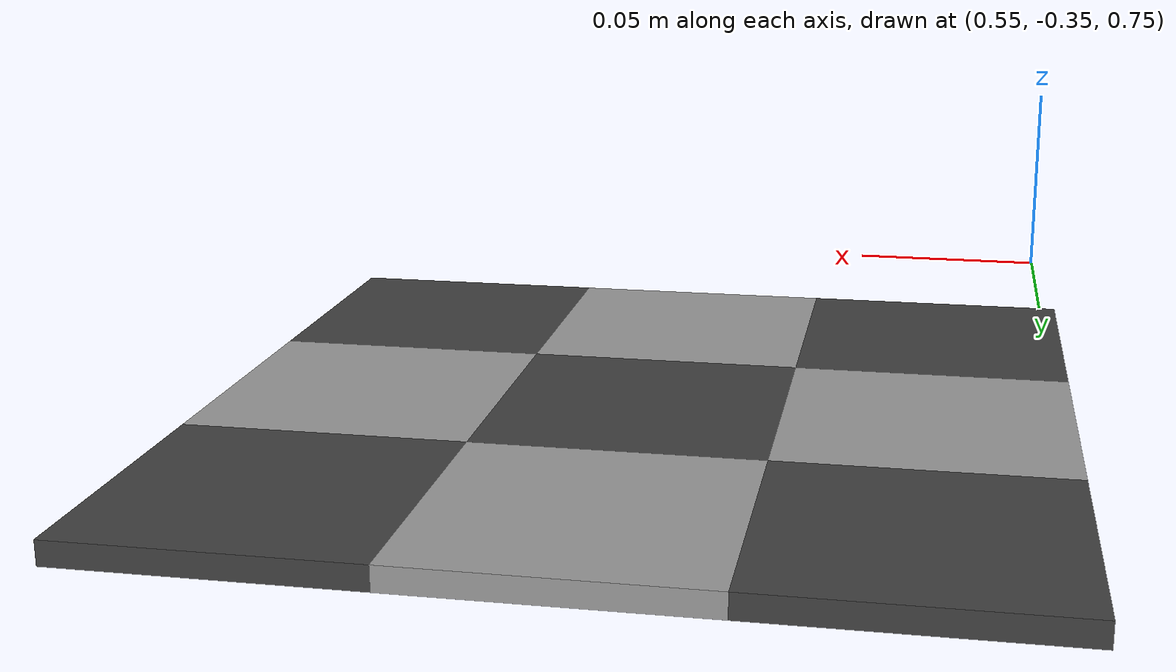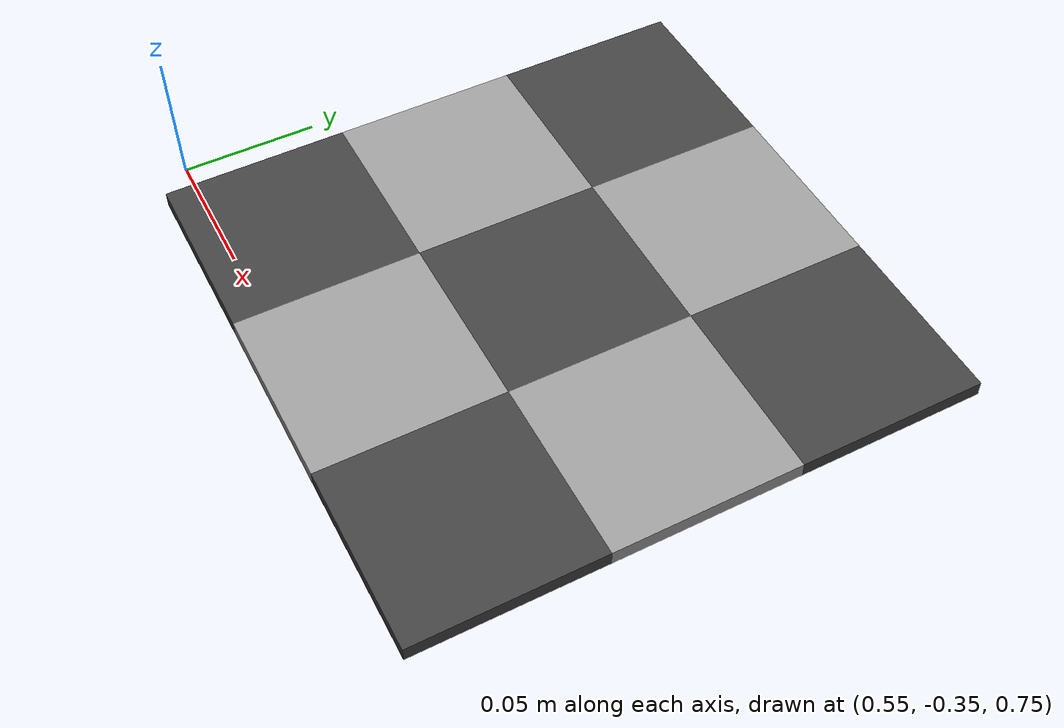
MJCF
<mujoco>
    <default>
        <default class="ghost_body">
            <geom contype="0" conaffinity="0"/>
        </default>
    </default>

    <worldbody>
        <body name="tictactoe_table" pos="0.65 -0.25 0.70" childclass="ghost_body">
            <geom name="cell_1" type="box" pos="0.072 0.072 0.031" size="0.036 0.036 0.003" rgba="0.25 0.25 0.25 1" />
            <geom name="cell_2" type="box" pos="0.072 0 0.031" size="0.036 0.036 0.003" rgba="0.60 0.60 0.60 1" />
            <geom name="cell_3" type="box" pos="0.072 -0.072 0.031" size="0.036 0.036 0.003" rgba="0.25 0.25 0.25 1" />
            <geom name="cell_4" type="box" pos="0 0.072 0.031" size="0.036 0.036 0.003" rgba="0.60 0.60 0.60 1" />
            <geom name="cell_5" type="box" pos="0 0 0.031" size="0.036 0.036 0.003" rgba="0.25 0.25 0.25 1" />
            <geom name="cell_6" type="box" pos="0 -0.072 0.031" size="0.036 0.036 0.003" rgba="0.60 0.60 0.60 1" />
            <geom name="cell_7" type="box" pos="-0.072 0.072 0.031" size="0.036 0.036 0.003" rgba="0.25 0.25 0.25 1" />
            <geom name="cell_8" type="box" pos="-0.072 0 0.031" size="0.036 0.036 0.003" rgba="0.60 0.60 0.60 1" />
            <geom name="cell_9" type="box" pos="-0.072 -0.072 0.031" size="0.036 0.036 0.003" rgba="0.25 0.25 0.25 1" />
        </body>
    </worldbody>
</mujoco>
